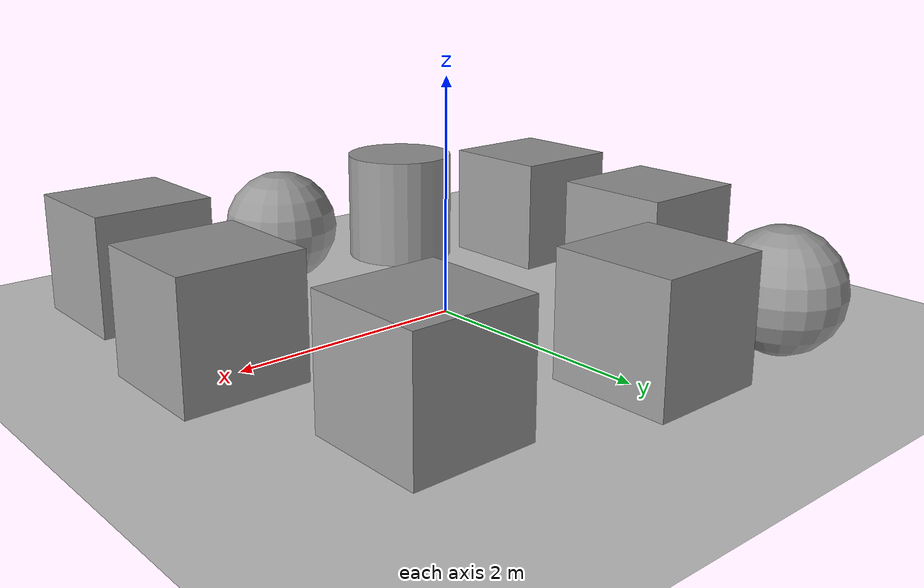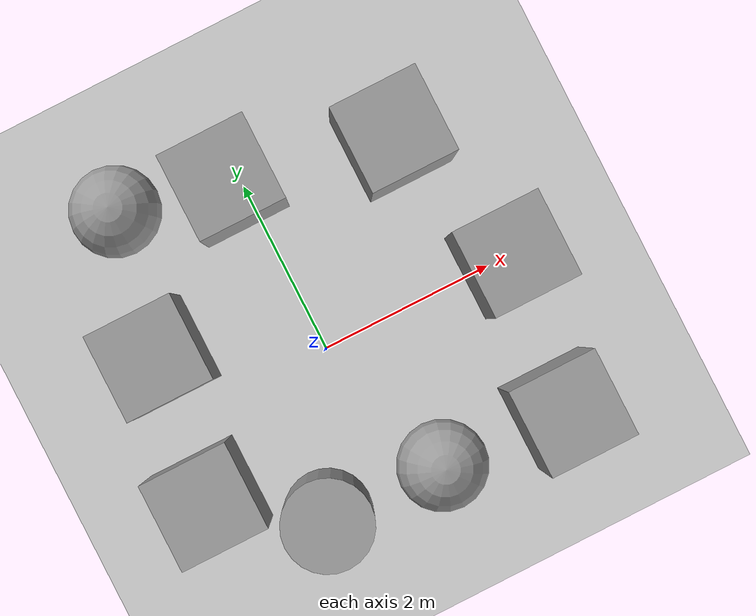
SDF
<sdf version="1.6">
 <world name="default">
  <light name="sun" type="directional">
   <pose>0 0 10 0 -0 0</pose>
   <diffuse>0.8 0.8 0.8 1</diffuse>
   <specular>0.2 0.2 0.2 1</specular>
   <attenuation>
    <range>1000</range>
    <constant>0.9</constant>
    <linear>0.01</linear>
    <quadratic>0.001</quadratic>
   </attenuation>
   <direction>-0.5 0.1 -0.9</direction>
  </light>
  <model name="ground_plane">
   <static>1</static>
   <link name="link">
    <collision name="collision">
     <geometry><plane><normal>0 0 1</normal><size>100 100</size></plane></geometry>
     <surface>
      <contact><collide_bitmask>65535</collide_bitmask></contact>
      <friction><ode><mu>100</mu><mu2>50</mu2></ode></friction>
     </surface>
    </collision>
    <visual name="visual">
     <cast_shadows>0</cast_shadows>
     <geometry><plane><normal>0 0 1</normal><size>100 100</size></plane></geometry>
     <material>
      <script><uri>file://media/materials/scripts/gazebo.material</uri><name>Gazebo/Grey</name></script>
     </material>
    </visual>
   </link>
  </model>
  <gravity>0 0 -9.8</gravity>
  <magnetic_field>6e-06 2.3e-05 -4.2e-05</magnetic_field>
  <atmosphere type="adiabatic"/>
  <physics name="default_physics" default="0" type="ode">
   <max_step_size>0.001</max_step_size>
   <real_time_factor>1</real_time_factor>
   <real_time_update_rate>1000</real_time_update_rate>
  </physics>
  <scene><ambient>0.4 0.4 0.4 1</ambient><background>0.7 0.7 0.7 1</background><shadows>1</shadows></scene>
  <audio><device>default</device></audio>
  <spherical_coordinates>
   <surface_model>EARTH_WGS84</surface_model>
   <latitude_deg>0</latitude_deg>
   <longitude_deg>0</longitude_deg>
   <elevation>0</elevation>
   <heading_deg>0</heading_deg>
  </spherical_coordinates>
  <model name="unit_box">
   <pose>-0.148901 2.08003 0.499995 0 1e-05 0</pose>
   <link name="link">
    <inertial>
     <mass>1</mass>
     <inertia>
      <ixx>0.166667</ixx>
      <ixy>0</ixy>
      <ixz>0</ixz>
      <iyy>0.166667</iyy>
      <iyz>0</iyz>
      <izz>0.166667</izz>
     </inertia>
    </inertial>
    <collision name="collision"><geometry><box><size>1 1 1</size></box></geometry></collision>
    <visual name="visual">
     <geometry><box><size>1 1 1</size></box></geometry>
     <material>
      <script><name>Gazebo/Grey</name><uri>file://media/materials/scripts/gazebo.material</uri></script>
     </material>
    </visual>
   </link>
  </model>
  <model name="unit_box_0">
   <pose>1.66874 1.71114 0.499995 -1e-05 -0 -0</pose>
   <link name="link">
    <inertial>
     <mass>1</mass>
     <inertia>
      <ixx>0.166667</ixx>
      <ixy>0</ixy>
      <ixz>0</ixz>
      <iyy>0.166667</iyy>
      <iyz>0</iyz>
      <izz>0.166667</izz>
     </inertia>
    </inertial>
    <collision name="collision"><geometry><box><size>1 1 1</size></box></geometry></collision>
    <visual name="visual">
     <geometry><box><size>1 1 1</size></box></geometry>
     <material>
      <script><name>Gazebo/Grey</name><uri>file://media/materials/scripts/gazebo.material</uri></script>
     </material>
    </visual>
   </link>
  </model>
  <model name="unit_box_1">
   <pose>2.21238 -0.015547 0.499995 0 1e-05 0</pose>
   <link name="link">
    <inertial>
     <mass>1</mass>
     <inertia>
      <ixx>0.166667</ixx>
      <ixy>0</ixy>
      <ixz>0</ixz>
      <iyy>0.166667</iyy>
      <iyz>0</iyz>
      <izz>0.166667</izz>
     </inertia>
    </inertial>
    <collision name="collision"><geometry><box><size>1 1 1</size></box></geometry></collision>
    <visual name="visual">
     <geometry><box><size>1 1 1</size></box></geometry>
     <material>
      <script><name>Gazebo/Grey</name><uri>file://media/materials/scripts/gazebo.material</uri></script>
     </material>
    </visual>
   </link>
  </model>
  <model name="unit_box_2">
   <pose>1.98239 -1.75391 0.499995 -1e-05 -0 -0</pose>
   <link name="link">
    <inertial>
     <mass>1</mass>
     <inertia>
      <ixx>0.166667</ixx>
      <ixy>0</ixy>
      <ixz>0</ixz>
      <iyy>0.166667</iyy>
      <iyz>0</iyz>
      <izz>0.166667</izz>
     </inertia>
    </inertial>
    <collision name="collision"><geometry><box><size>1 1 1</size></box></geometry></collision>
    <visual name="visual">
     <geometry><box><size>1 1 1</size></box></geometry>
     <material>
      <script><name>Gazebo/Grey</name><uri>file://media/materials/scripts/gazebo.material</uri></script>
     </material>
    </visual>
   </link>
  </model>
  <model name="unit_sphere">
   <pose>0.543053 -1.67917 0.5 0 -0 0</pose>
   <link name="link">
    <inertial>
     <mass>1</mass>
     <inertia><ixx>0.1</ixx><ixy>0</ixy><ixz>0</ixz><iyy>0.1</iyy><iyz>0</iyz><izz>0.1</izz></inertia>
    </inertial>
    <collision name="collision"><geometry><sphere><radius>0.5</radius></sphere></geometry></collision>
    <visual name="visual">
     <geometry><sphere><radius>0.5</radius></sphere></geometry>
     <material>
      <script><name>Gazebo/Grey</name><uri>file://media/materials/scripts/gazebo.material</uri></script>
     </material>
    </visual>
   </link>
  </model>
  <model name="unit_cylinder">
   <pose>-0.810085 -1.63575 0.499993 -3e-06 -3e-06 0</pose>
   <link name="link">
    <inertial>
     <mass>1</mass>
     <inertia><ixx>0.145833</ixx><ixy>0</ixy><ixz>0</ixz><iyy>0.145833</iyy><iyz>0</iyz><izz>0.125</izz></inertia>
    </inertial>
    <collision name="collision">
     <geometry><cylinder><radius>0.5</radius><length>1</length></cylinder></geometry>
    </collision>
    <visual name="visual">
     <geometry><cylinder><radius>0.5</radius><length>1</length></cylinder></geometry>
     <material>
      <script><name>Gazebo/Grey</name><uri>file://media/materials/scripts/gazebo.material</uri></script>
     </material>
    </visual>
   </link>
  </model>
  <model name="unit_box_3">
   <pose>-1.67166 0.754742 0.499995 0 1e-05 0</pose>
   <link name="link">
    <inertial>
     <mass>1</mass>
     <inertia>
      <ixx>0.166667</ixx>
      <ixy>0</ixy>
      <ixz>0</ixz>
      <iyy>0.166667</iyy>
      <iyz>0</iyz>
      <izz>0.166667</izz>
     </inertia>
    </inertial>
    <collision name="collision"><geometry><box><size>1 1 1</size></box></geometry></collision>
    <visual name="visual">
     <geometry><box><size>1 1 1</size></box></geometry>
     <material>
      <script><name>Gazebo/Grey</name><uri>file://media/materials/scripts/gazebo.material</uri></script>
     </material>
    </visual>
   </link>
  </model>
  <model name="unit_box_4">
   <pose>-1.86595 -0.878016 0.499995 -1e-05 -0 0</pose>
   <link name="link">
    <inertial>
     <mass>1</mass>
     <inertia>
      <ixx>0.166667</ixx>
      <ixy>0</ixy>
      <ixz>0</ixz>
      <iyy>0.166667</iyy>
      <iyz>0</iyz>
      <izz>0.166667</izz>
     </inertia>
    </inertial>
    <collision name="collision"><geometry><box><size>1 1 1</size></box></geometry></collision>
    <visual name="visual">
     <geometry><box><size>1 1 1</size></box></geometry>
     <material>
      <script><name>Gazebo/Grey</name><uri>file://media/materials/scripts/gazebo.material</uri></script>
     </material>
    </visual>
   </link>
  </model>
  <model name="unit_sphere_0">
   <pose>-1.33624 2.32944 0.5 0 -0 0</pose>
   <link name="link">
    <inertial>
     <mass>1</mass>
     <inertia><ixx>0.1</ixx><ixy>0</ixy><ixz>0</ixz><iyy>0.1</iyy><iyz>0</iyz><izz>0.1</izz></inertia>
    </inertial>
    <collision name="collision"><geometry><sphere><radius>0.5</radius></sphere></geometry></collision>
    <visual name="visual">
     <geometry><sphere><radius>0.5</radius></sphere></geometry>
     <material>
      <script><name>Gazebo/Grey</name><uri>file://media/materials/scripts/gazebo.material</uri></script>
     </material>
    </visual>
   </link>
  </model>
 </world>
</sdf>
